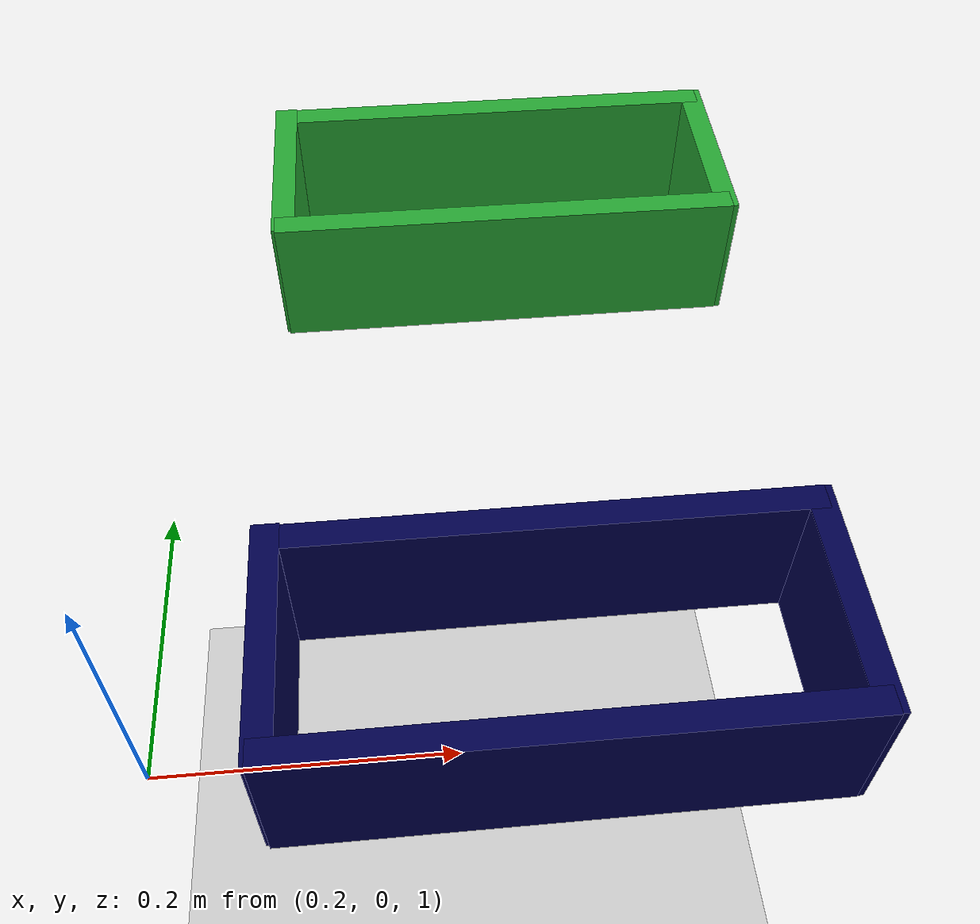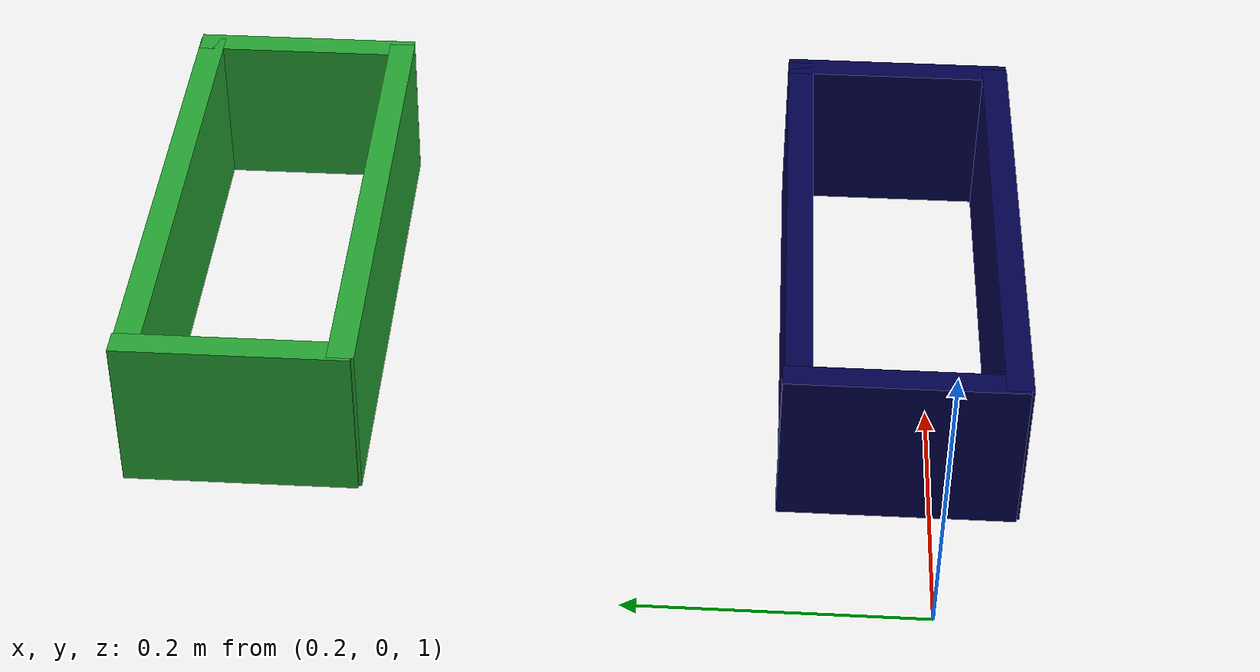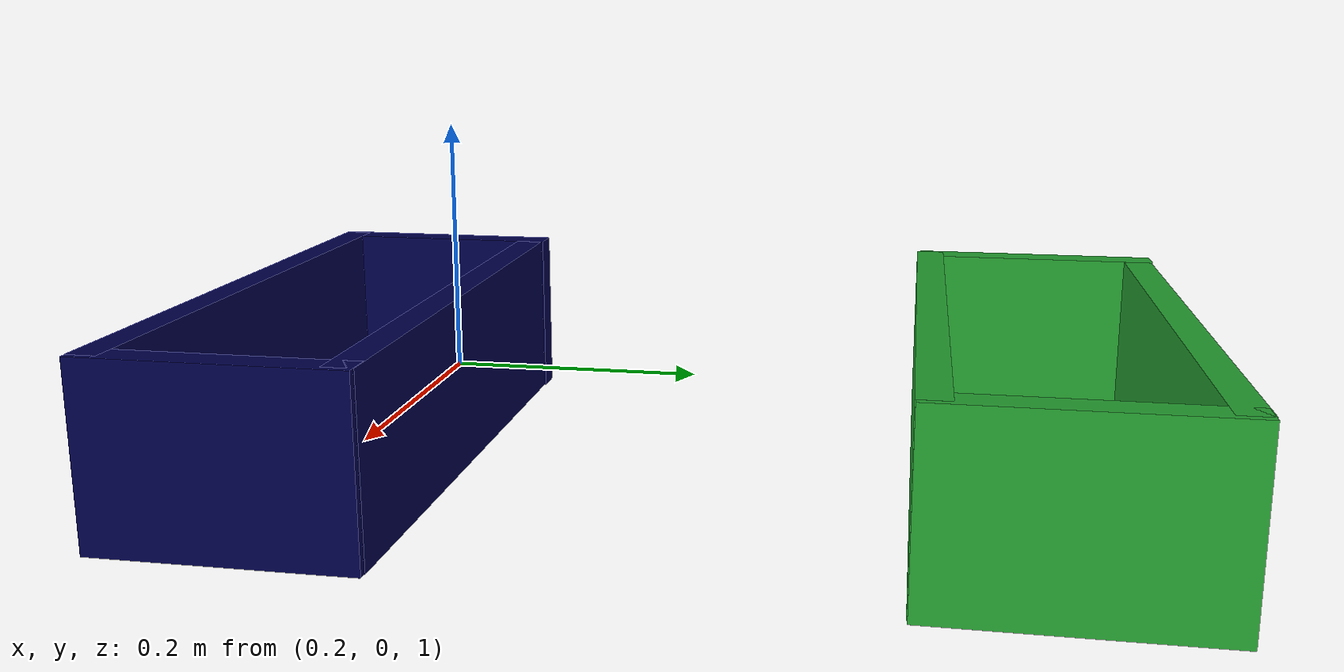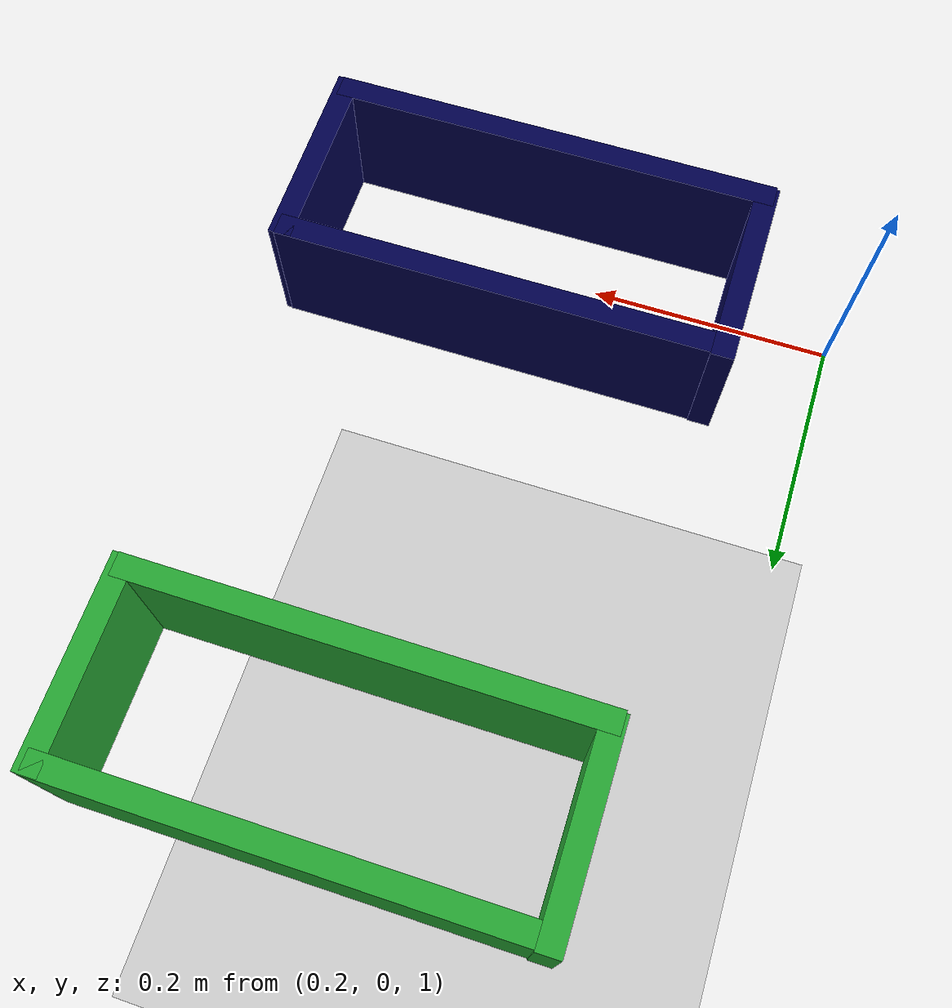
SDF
<sdf version="1.6">
 <world name="default">
  <model name="ground_plane">
   <static>1</static>
   <link name="link">
    <collision name="collision">
     <geometry><plane><normal>0 0 1</normal><size>100 100</size></plane></geometry>
     <surface>
      <contact><collide_bitmask>65535</collide_bitmask></contact>
      <friction><ode><mu>100</mu><mu2>50</mu2></ode></friction>
     </surface>
    </collision>
    <visual name="visual">
     <cast_shadows>0</cast_shadows>
     <geometry><plane><normal>0 0 1</normal><size>100 100</size></plane></geometry>
     <material>
      <script><uri>file://media/materials/scripts/gazebo.material</uri><name>Gazebo/Grey</name></script>
     </material>
    </visual>
   </link>
  </model>
  <model name="DepositBoxGreen">
   <link name="link_0">
    <inertial>
     <mass>0.00071026</mass>
     <inertia>
      <ixx>7.3e-07</ixx>
      <ixy>0</ixy>
      <ixz>0</ixz>
      <iyy>8.36e-06</iyy>
      <iyz>0</iyz>
      <izz>7.66e-06</izz>
     </inertia>
    </inertial>
    <pose>0 -0.07 5e-06 0 -0 0</pose>
    <visual name="visual">
     <geometry><box><size>0.359288 0.017976 0.109964</size></box></geometry>
     <material>
      <lighting>1</lighting>
      <script><uri>file://media/materials/scripts/gazebo.material</uri><name>Gazebo/Green</name></script>
      <emissive>0 0 0 1</emissive>
      <shader type="vertex"><normal_map>__default__</normal_map></shader>
      <ambient>0 0.3 0 1</ambient>
      <diffuse>0.7 0.7 0.7 1</diffuse>
      <specular>0.1 0.1 0.1 1</specular>
     </material>
    </visual>
    <collision name="collision">
     <geometry><box><size>0.359288 0.017976 0.109964</size></box></geometry>
     <surface>
      <friction>
       <ode><mu>1</mu><mu2>1</mu2><fdir1>0 0 0</fdir1><slip1>0</slip1><slip2>0</slip2></ode>
       <torsional>
        <coefficient>1</coefficient>
        <patch_radius>0</patch_radius>
        <surface_radius>0</surface_radius>
        <use_patch_radius>1</use_patch_radius>
        <ode><slip>0</slip></ode>
       </torsional>
      </friction>
      <bounce><restitution_coefficient>0</restitution_coefficient><threshold>1e+06</threshold></bounce>
      <contact>
       <collide_without_contact>0</collide_without_contact>
       <collide_without_contact_bitmask>1</collide_without_contact_bitmask>
       <collide_bitmask>1</collide_bitmask>
       <ode>
        <soft_cfm>0</soft_cfm>
        <soft_erp>0.2</soft_erp>
        <kp>1e+13</kp>
        <kd>1</kd>
        <max_vel>0.01</max_vel>
        <min_depth>0</min_depth>
       </ode>
       <bullet>
        <split_impulse>1</split_impulse>
        <split_impulse_penetration_threshold>-0.01</split_impulse_penetration_threshold>
        <soft_cfm>0</soft_cfm>
        <soft_erp>0.2</soft_erp>
        <kp>1e+13</kp>
        <kd>1</kd>
       </bullet>
      </contact>
     </surface>
    </collision>
   </link>
   <link name="link_0_clone">
    <inertial>
     <mass>0.00071026</mass>
     <inertia>
      <ixx>7.3e-07</ixx>
      <ixy>0</ixy>
      <ixz>0</ixz>
      <iyy>8.36e-06</iyy>
      <iyz>0</iyz>
      <izz>7.66e-06</izz>
     </inertia>
    </inertial>
    <pose>-0 0.07 0 0 -0 0</pose>
    <visual name="visual">
     <geometry><box><size>0.359288 0.017976 0.109964</size></box></geometry>
     <material>
      <lighting>1</lighting>
      <script><uri>file://media/materials/scripts/gazebo.material</uri><name>Gazebo/Green</name></script>
      <shader type="pixel"><normal_map>__default__</normal_map></shader>
      <emissive>0 0 0 1</emissive>
      <ambient>0 0.3 0 1</ambient>
      <diffuse>0.7 0.7 0.7 1</diffuse>
      <specular>0.01 0.01 0.01 1</specular>
     </material>
    </visual>
    <collision name="collision">
     <geometry><box><size>0.359288 0.017976 0.109964</size></box></geometry>
     <surface>
      <friction>
       <ode><mu>1</mu><mu2>1</mu2><fdir1>0 0 0</fdir1><slip1>0</slip1><slip2>0</slip2></ode>
       <torsional>
        <coefficient>1</coefficient>
        <patch_radius>0</patch_radius>
        <surface_radius>0</surface_radius>
        <use_patch_radius>1</use_patch_radius>
        <ode><slip>0</slip></ode>
       </torsional>
      </friction>
      <bounce><restitution_coefficient>0</restitution_coefficient><threshold>1e+06</threshold></bounce>
      <contact>
       <collide_without_contact>0</collide_without_contact>
       <collide_without_contact_bitmask>1</collide_without_contact_bitmask>
       <collide_bitmask>1</collide_bitmask>
       <ode>
        <soft_cfm>0</soft_cfm>
        <soft_erp>0.2</soft_erp>
        <kp>1e+13</kp>
        <kd>1</kd>
        <max_vel>0.01</max_vel>
        <min_depth>0</min_depth>
       </ode>
       <bullet>
        <split_impulse>1</split_impulse>
        <split_impulse_penetration_threshold>-0.01</split_impulse_penetration_threshold>
        <soft_cfm>0</soft_cfm>
        <soft_erp>0.2</soft_erp>
        <kp>1e+13</kp>
        <kd>1</kd>
       </bullet>
      </contact>
     </surface>
    </collision>
   </link>
   <link name="link_0_clone_0">
    <inertial>
     <mass>0.00033889</mass>
     <inertia><ixx>3.5e-07</ixx><ixy>0</ixy><ixz>0</ixz><iyy>1.17e-06</iyy><iyz>0</iyz><izz>8.4e-07</izz></inertia>
    </inertial>
    <pose>-0.172905 0.001548 4e-06 -0 -0 -1.57234</pose>
    <visual name="visual">
     <geometry><box><size>0.157 0.017976 0.109964</size></box></geometry>
     <material>
      <lighting>1</lighting>
      <script><uri>file://media/materials/scripts/gazebo.material</uri><name>Gazebo/Green</name></script>
      <shader type="vertex"><normal_map>__default__</normal_map></shader>
      <emissive>0 0 0 1</emissive>
      <ambient>0 0.3 0 1</ambient>
      <diffuse>0.7 0.7 0.7 1</diffuse>
      <specular>0.01 0.01 0.01 1</specular>
     </material>
    </visual>
    <collision name="collision">
     <geometry><box><size>0.171428 0.017976 0.109964</size></box></geometry>
     <surface>
      <friction>
       <ode><mu>1</mu><mu2>1</mu2><fdir1>0 0 0</fdir1><slip1>0</slip1><slip2>0</slip2></ode>
       <torsional>
        <coefficient>1</coefficient>
        <patch_radius>0</patch_radius>
        <surface_radius>0</surface_radius>
        <use_patch_radius>1</use_patch_radius>
        <ode><slip>0</slip></ode>
       </torsional>
      </friction>
      <bounce><restitution_coefficient>0</restitution_coefficient><threshold>1e+06</threshold></bounce>
      <contact>
       <collide_without_contact>0</collide_without_contact>
       <collide_without_contact_bitmask>1</collide_without_contact_bitmask>
       <collide_bitmask>1</collide_bitmask>
       <ode>
        <soft_cfm>0</soft_cfm>
        <soft_erp>0.2</soft_erp>
        <kp>1e+13</kp>
        <kd>1</kd>
        <max_vel>0.01</max_vel>
        <min_depth>0</min_depth>
       </ode>
       <bullet>
        <split_impulse>1</split_impulse>
        <split_impulse_penetration_threshold>-0.01</split_impulse_penetration_threshold>
        <soft_cfm>0</soft_cfm>
        <soft_erp>0.2</soft_erp>
        <kp>1e+13</kp>
        <kd>1</kd>
       </bullet>
      </contact>
     </surface>
    </collision>
   </link>
   <link name="link_0_clone_0_clone">
    <inertial>
     <mass>0.00033759</mass>
     <inertia><ixx>3.5e-07</ixx><ixy>0</ixy><ixz>0</ixz><iyy>1.16e-06</iyy><iyz>0</iyz><izz>8.3e-07</izz></inertia>
    </inertial>
    <pose>0.175 0 0 -0 -0 -1.57234</pose>
    <visual name="visual">
     <geometry><box><size>0.157 0.017976 0.109964</size></box></geometry>
     <material>
      <lighting>1</lighting>
      <script><uri>file://media/materials/scripts/gazebo.material</uri><name>Gazebo/Green</name></script>
      <shader type="pixel"><normal_map>__default__</normal_map></shader>
      <emissive>0 0 0 1</emissive>
      <ambient>0 0.3 0 1</ambient>
      <diffuse>0.7 0.7 0.7 1</diffuse>
      <specular>0.01 0.01 0.01 1</specular>
     </material>
    </visual>
    <collision name="collision">
     <geometry><box><size>0.170763 0.017976 0.109964</size></box></geometry>
     <surface>
      <friction>
       <ode><mu>1</mu><mu2>1</mu2><fdir1>0 0 0</fdir1><slip1>0</slip1><slip2>0</slip2></ode>
       <torsional>
        <coefficient>1</coefficient>
        <patch_radius>0</patch_radius>
        <surface_radius>0</surface_radius>
        <use_patch_radius>1</use_patch_radius>
        <ode><slip>0</slip></ode>
       </torsional>
      </friction>
      <bounce><restitution_coefficient>0</restitution_coefficient><threshold>1e+06</threshold></bounce>
      <contact>
       <collide_without_contact>0</collide_without_contact>
       <collide_without_contact_bitmask>1</collide_without_contact_bitmask>
       <collide_bitmask>1</collide_bitmask>
       <ode>
        <soft_cfm>0</soft_cfm>
        <soft_erp>0.2</soft_erp>
        <kp>1e+13</kp>
        <kd>1</kd>
        <max_vel>0.01</max_vel>
        <min_depth>0</min_depth>
       </ode>
       <bullet>
        <split_impulse>1</split_impulse>
        <split_impulse_penetration_threshold>-0.01</split_impulse_penetration_threshold>
        <soft_cfm>0</soft_cfm>
        <soft_erp>0.2</soft_erp>
        <kp>1e+13</kp>
        <kd>1</kd>
       </bullet>
      </contact>
     </surface>
    </collision>
   </link>
   <joint name="link_0_clone_0_clone_JOINT_0" type="fixed">
    <parent>link_0_clone_0_clone</parent>
    <child>link_0</child>
    <physics>
     <ode><limit><cfm>0</cfm><erp>0.2</erp></limit><suspension><cfm>0</cfm><erp>0.2</erp></suspension></ode>
    </physics>
   </joint>
   <joint name="link_0_clone_0_clone_JOINT_1" type="fixed">
    <parent>link_0_clone_0_clone</parent>
    <child>link_0_clone</child>
    <physics>
     <ode><limit><cfm>0</cfm><erp>0.2</erp></limit><suspension><cfm>0</cfm><erp>0.2</erp></suspension></ode>
    </physics>
   </joint>
   <joint name="link_0_clone_0_clone_JOINT_2" type="fixed">
    <parent>link_0_clone_0_clone</parent>
    <child>link_0_clone_0</child>
    <physics>
     <ode><limit><cfm>0</cfm><erp>0.2</erp></limit><suspension><cfm>0</cfm><erp>0.2</erp></suspension></ode>
    </physics>
   </joint>
   <static>0</static>
   <pose>0.464197 0.4548 1.06997 3e-06 -2e-06 0.003079</pose>
  </model>
  <model name="DepositBoxBlue">
   <link name="link_0">
    <inertial>
     <mass>0.00071026</mass>
     <inertia>
      <ixx>7.3e-07</ixx>
      <ixy>0</ixy>
      <ixz>0</ixz>
      <iyy>8.36e-06</iyy>
      <iyz>0</iyz>
      <izz>7.66e-06</izz>
     </inertia>
    </inertial>
    <pose>0 -0.07 5e-06 0 -0 0</pose>
    <visual name="visual">
     <geometry><box><size>0.359288 0.017976 0.109964</size></box></geometry>
     <material>
      <lighting>1</lighting>
      <script><uri>file://media/materials/scripts/gazebo.material</uri><name>Gazebo/Grey</name></script>
      <emissive>0 0 0 1</emissive>
      <shader type="vertex"><normal_map>__default__</normal_map></shader>
      <ambient>0 0 0.3 1</ambient>
      <diffuse>0.7 0.7 0.7 1</diffuse>
      <specular>0.1 0.1 0.1 1</specular>
     </material>
    </visual>
    <collision name="collision">
     <geometry><box><size>0.359288 0.017976 0.109964</size></box></geometry>
     <surface>
      <friction>
       <ode><mu>1</mu><mu2>1</mu2><fdir1>0 0 0</fdir1><slip1>0</slip1><slip2>0</slip2></ode>
       <torsional>
        <coefficient>1</coefficient>
        <patch_radius>0</patch_radius>
        <surface_radius>0</surface_radius>
        <use_patch_radius>1</use_patch_radius>
        <ode><slip>0</slip></ode>
       </torsional>
      </friction>
      <bounce><restitution_coefficient>0</restitution_coefficient><threshold>1e+06</threshold></bounce>
      <contact>
       <collide_without_contact>0</collide_without_contact>
       <collide_without_contact_bitmask>1</collide_without_contact_bitmask>
       <collide_bitmask>1</collide_bitmask>
       <ode>
        <soft_cfm>0</soft_cfm>
        <soft_erp>0.2</soft_erp>
        <kp>1e+13</kp>
        <kd>1</kd>
        <max_vel>0.01</max_vel>
        <min_depth>0</min_depth>
       </ode>
       <bullet>
        <split_impulse>1</split_impulse>
        <split_impulse_penetration_threshold>-0.01</split_impulse_penetration_threshold>
        <soft_cfm>0</soft_cfm>
        <soft_erp>0.2</soft_erp>
        <kp>1e+13</kp>
        <kd>1</kd>
       </bullet>
      </contact>
     </surface>
    </collision>
   </link>
   <link name="link_0_clone">
    <inertial>
     <mass>0.00071026</mass>
     <inertia>
      <ixx>7.3e-07</ixx>
      <ixy>0</ixy>
      <ixz>0</ixz>
      <iyy>8.36e-06</iyy>
      <iyz>0</iyz>
      <izz>7.66e-06</izz>
     </inertia>
    </inertial>
    <pose>-0 0.07 0 0 -0 0</pose>
    <visual name="visual">
     <geometry><box><size>0.359288 0.017976 0.109964</size></box></geometry>
     <material>
      <lighting>1</lighting>
      <script><uri>file://media/materials/scripts/gazebo.material</uri><name>Gazebo/Grey</name></script>
      <shader type="pixel"><normal_map>__default__</normal_map></shader>
      <emissive>0 0 0 1</emissive>
      <ambient>0 0 0.3 1</ambient>
      <diffuse>0.7 0.7 0.7 1</diffuse>
      <specular>0.01 0.01 0.01 1</specular>
     </material>
    </visual>
    <collision name="collision">
     <geometry><box><size>0.359288 0.017976 0.109964</size></box></geometry>
     <surface>
      <friction>
       <ode><mu>1</mu><mu2>1</mu2><fdir1>0 0 0</fdir1><slip1>0</slip1><slip2>0</slip2></ode>
       <torsional>
        <coefficient>1</coefficient>
        <patch_radius>0</patch_radius>
        <surface_radius>0</surface_radius>
        <use_patch_radius>1</use_patch_radius>
        <ode><slip>0</slip></ode>
       </torsional>
      </friction>
      <bounce><restitution_coefficient>0</restitution_coefficient><threshold>1e+06</threshold></bounce>
      <contact>
       <collide_without_contact>0</collide_without_contact>
       <collide_without_contact_bitmask>1</collide_without_contact_bitmask>
       <collide_bitmask>1</collide_bitmask>
       <ode>
        <soft_cfm>0</soft_cfm>
        <soft_erp>0.2</soft_erp>
        <kp>1e+13</kp>
        <kd>1</kd>
        <max_vel>0.01</max_vel>
        <min_depth>0</min_depth>
       </ode>
       <bullet>
        <split_impulse>1</split_impulse>
        <split_impulse_penetration_threshold>-0.01</split_impulse_penetration_threshold>
        <soft_cfm>0</soft_cfm>
        <soft_erp>0.2</soft_erp>
        <kp>1e+13</kp>
        <kd>1</kd>
       </bullet>
      </contact>
     </surface>
    </collision>
   </link>
   <link name="link_0_clone_0">
    <inertial>
     <mass>0.00033889</mass>
     <inertia><ixx>3.5e-07</ixx><ixy>0</ixy><ixz>0</ixz><iyy>1.17e-06</iyy><iyz>0</iyz><izz>8.4e-07</izz></inertia>
    </inertial>
    <pose>-0.172905 0.001548 4e-06 -0 -0 -1.57234</pose>
    <visual name="visual">
     <geometry><box><size>0.157 0.017976 0.109964</size></box></geometry>
     <material>
      <lighting>1</lighting>
      <script><uri>file://media/materials/scripts/gazebo.material</uri><name>Gazebo/Grey</name></script>
      <shader type="vertex"><normal_map>__default__</normal_map></shader>
      <emissive>0 0 0 1</emissive>
      <ambient>0 0 0.3 1</ambient>
      <diffuse>0.7 0.7 0.7 1</diffuse>
      <specular>0.01 0.01 0.01 1</specular>
     </material>
    </visual>
    <collision name="collision">
     <geometry><box><size>0.171428 0.017976 0.109964</size></box></geometry>
     <surface>
      <friction>
       <ode><mu>1</mu><mu2>1</mu2><fdir1>0 0 0</fdir1><slip1>0</slip1><slip2>0</slip2></ode>
       <torsional>
        <coefficient>1</coefficient>
        <patch_radius>0</patch_radius>
        <surface_radius>0</surface_radius>
        <use_patch_radius>1</use_patch_radius>
        <ode><slip>0</slip></ode>
       </torsional>
      </friction>
      <bounce><restitution_coefficient>0</restitution_coefficient><threshold>1e+06</threshold></bounce>
      <contact>
       <collide_without_contact>0</collide_without_contact>
       <collide_without_contact_bitmask>1</collide_without_contact_bitmask>
       <collide_bitmask>1</collide_bitmask>
       <ode>
        <soft_cfm>0</soft_cfm>
        <soft_erp>0.2</soft_erp>
        <kp>1e+13</kp>
        <kd>1</kd>
        <max_vel>0.01</max_vel>
        <min_depth>0</min_depth>
       </ode>
       <bullet>
        <split_impulse>1</split_impulse>
        <split_impulse_penetration_threshold>-0.01</split_impulse_penetration_threshold>
        <soft_cfm>0</soft_cfm>
        <soft_erp>0.2</soft_erp>
        <kp>1e+13</kp>
        <kd>1</kd>
       </bullet>
      </contact>
     </surface>
    </collision>
   </link>
   <link name="link_0_clone_0_clone">
    <inertial>
     <mass>0.00033759</mass>
     <inertia><ixx>3.5e-07</ixx><ixy>0</ixy><ixz>0</ixz><iyy>1.16e-06</iyy><iyz>0</iyz><izz>8.3e-07</izz></inertia>
    </inertial>
    <pose>0.175 0 0 -0 -0 -1.57234</pose>
    <visual name="visual">
     <geometry><box><size>0.157 0.017976 0.109964</size></box></geometry>
     <material>
      <lighting>1</lighting>
      <script><uri>file://media/materials/scripts/gazebo.material</uri><name>Gazebo/Grey</name></script>
      <shader type="pixel"><normal_map>__default__</normal_map></shader>
      <emissive>0 0 0 1</emissive>
      <ambient>0 0 0.3 1</ambient>
      <diffuse>0.7 0.7 0.7 1</diffuse>
      <specular>0.01 0.01 0.01 1</specular>
     </material>
    </visual>
    <collision name="collision">
     <geometry><box><size>0.170763 0.017976 0.109964</size></box></geometry>
     <surface>
      <friction>
       <ode><mu>1</mu><mu2>1</mu2><fdir1>0 0 0</fdir1><slip1>0</slip1><slip2>0</slip2></ode>
       <torsional>
        <coefficient>1</coefficient>
        <patch_radius>0</patch_radius>
        <surface_radius>0</surface_radius>
        <use_patch_radius>1</use_patch_radius>
        <ode><slip>0</slip></ode>
       </torsional>
      </friction>
      <bounce><restitution_coefficient>0</restitution_coefficient><threshold>1e+06</threshold></bounce>
      <contact>
       <collide_without_contact>0</collide_without_contact>
       <collide_without_contact_bitmask>1</collide_without_contact_bitmask>
       <collide_bitmask>1</collide_bitmask>
       <ode>
        <soft_cfm>0</soft_cfm>
        <soft_erp>0.2</soft_erp>
        <kp>1e+13</kp>
        <kd>1</kd>
        <max_vel>0.01</max_vel>
        <min_depth>0</min_depth>
       </ode>
       <bullet>
        <split_impulse>1</split_impulse>
        <split_impulse_penetration_threshold>-0.01</split_impulse_penetration_threshold>
        <soft_cfm>0</soft_cfm>
        <soft_erp>0.2</soft_erp>
        <kp>1e+13</kp>
        <kd>1</kd>
       </bullet>
      </contact>
     </surface>
    </collision>
   </link>
   <joint name="link_0_clone_0_clone_JOINT_0" type="fixed">
    <parent>link_0_clone_0_clone</parent>
    <child>link_0</child>
    <physics>
     <ode><limit><cfm>0</cfm><erp>0.2</erp></limit><suspension><cfm>0</cfm><erp>0.2</erp></suspension></ode>
    </physics>
   </joint>
   <joint name="link_0_clone_0_clone_JOINT_1" type="fixed">
    <parent>link_0_clone_0_clone</parent>
    <child>link_0_clone</child>
    <physics>
     <ode><limit><cfm>0</cfm><erp>0.2</erp></limit><suspension><cfm>0</cfm><erp>0.2</erp></suspension></ode>
    </physics>
   </joint>
   <joint name="link_0_clone_0_clone_JOINT_2" type="fixed">
    <parent>link_0_clone_0_clone</parent>
    <child>link_0_clone_0</child>
    <physics>
     <ode><limit><cfm>0</cfm><erp>0.2</erp></limit><suspension><cfm>0</cfm><erp>0.2</erp></suspension></ode>
    </physics>
   </joint>
   <static>0</static>
   <pose>0.460205 0.022306 1.06997 3e-06 -2e-06 0.003079</pose>
  </model>
 </world>
</sdf>
